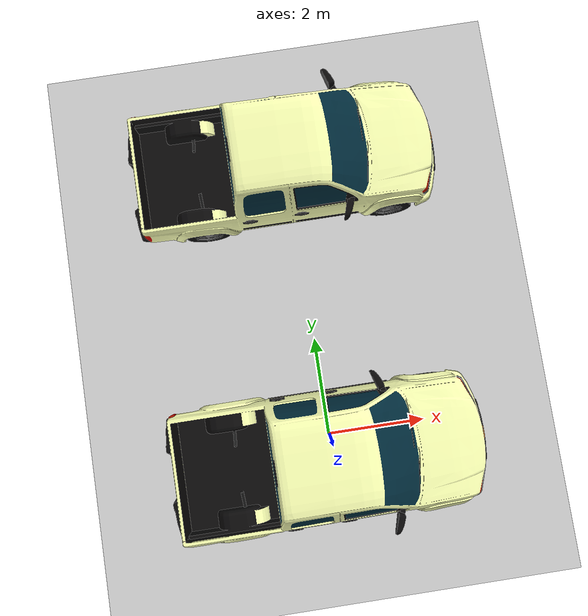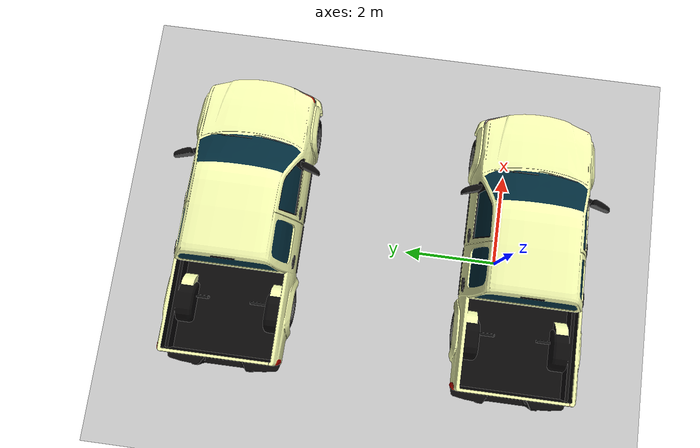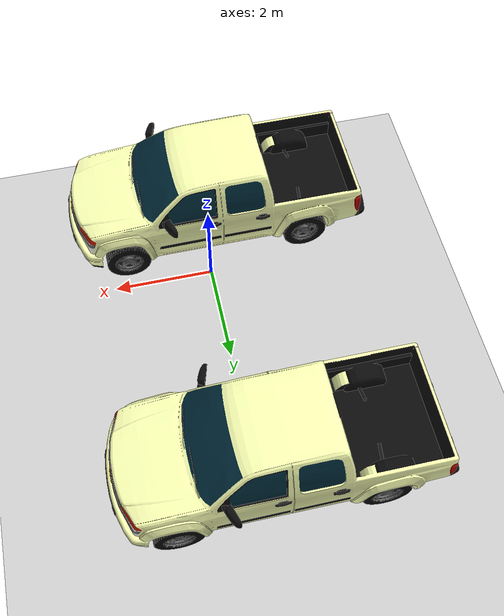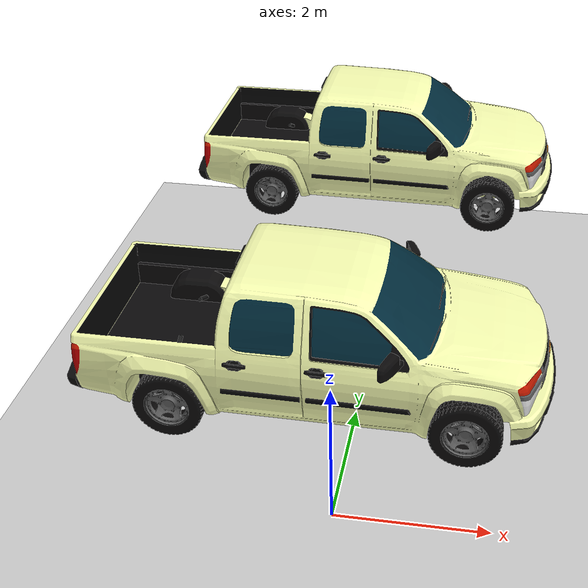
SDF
<?xml version="1.0" ?>
<sdf version="1.4">
    <world name="default">
        <include>
            <uri>model://sun</uri>
        </include>
        <scene>
            <sky>
                <time>10</time>
                <clouds>
                    <speed>5</speed>
                    <direction>1.14</direction>
                    <humidity>0.3</humidity>
                </clouds>
            </sky>
        </scene>
        <gui>
            <camera name="camera_pose">
                <pose>80 -60 60 0 0.5 2</pose>
            </camera>
        </gui>
        <include>
            <uri>model://ground_plane</uri>
            <name>ground_plane</name>
            <pose>0 0 0 0 0 0</pose>
        </include>
        <include>
            <uri>model://colorado</uri>
            <name>colorado1</name>
            <pose>0 0 2 0 0 0</pose>
            <plugin name="colorado1_driving_plugin" filename="libcolorado_driving_plugin.so"/>
        </include>
        <include>
            <uri>model://colorado</uri>
            <name>colorado2</name>
            <pose>0 5 2 0 0 0</pose>
            <plugin name="colorado2_driving_plugin" filename="libcolorado_driving_plugin.so"/>
        </include>
    </world>
</sdf>

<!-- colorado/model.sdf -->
<!-- -*- mode: XML -*- -->
<sdf version='1.4'>
	<model name='colorado'>
		<link name='body'>
			<pose>0 0 0 0 0 0</pose>
			<gravity>1</gravity>
			<self_collide>1</self_collide>
			<inertial>
				<pose>0.00 0.00 1 0 0 0</pose>
				<mass>2000</mass>
				<inertia>
					<ixx>500</ixx>
					<ixy>0.00</ixy>
					<ixz>0.00</ixz>
					<iyy>2000</iyy>
					<iyz>0.00</iyz>
					<izz>2000</izz>
				</inertia>
			</inertial>
			<collision name='body_collision_base_mid'>
				<pose>-0.17975 0 1.20715 0 0 0</pose>
				<geometry>
					<box>
						<size>1.934 2.392 1.438</size>
					</box>
				</geometry>
			</collision>
			<collision name='body_collision_base_hood'>
				<pose>1.65953 0 1.20715 0 0.09472 0</pose>
				<geometry>
					<box>
						<size>1.622 2.414 0.1</size>
					</box>
				</geometry>
			</collision>
			<collision name='body_collision_base_back'>
				<pose>-2.59851 0 1.08547 0 0 0</pose>
				<geometry>
					<box>
						<size>0.158 2.46 0.591</size>
					</box>
				</geometry>
			</collision>
			<collision name='body_collision_base_back_top'>
				<pose>-1.93823 0 1.56472 0 -0.33794 0</pose>
				<geometry>
					<box>
						<size>1.384 2.460 0.269</size>
					</box>
				</geometry>
			</collision>
			<visual name='body_visual'>
				<pose>0 0 0 0 0 0</pose>
				<geometry>
					<mesh>
						<scale>1 1 1</scale>
						<uri>model://../Assets/colorado_body.dae</uri>
					</mesh>
				</geometry>
			</visual>
		</link>

<!--Suspension setup-->
<!--Front left wheel-->
<link name="suspension_main_left_1">
<pose>1.6 0.27504 0.65450 0 0 0</pose>
  <inertial>
    <inertia>
      <ixx>0.01</ixx>
      <ixy>0.0</ixy>
      <ixz>0.0</ixz>
      <iyy>0.01</iyy>
      <iyz>0.0</iyz>
      <izz>0.01</izz>
    </inertia>
     <mass>50</mass>
  </inertial>
</link>
<link name="suspension_holder_left_1">
<pose>1.6 0.3666 0.8654 1.09558 0 0</pose>
  <inertial>
    <inertia>
      <ixx>0.01</ixx>
      <ixy>0.0</ixy>
      <ixz>0.0</ixz>
      <iyy>0.01</iyy>
      <iyz>0.0</iyz>
      <izz>0.01</izz>
    </inertia>
     <mass>50</mass>
  </inertial>
  <visual name='visual'>
    <pose>0 0 -0.25 0 0 0</pose>
    <geometry>
      <cylinder>
        <radius>0.025</radius>
        <length>0.5</length>
      </cylinder>
    </geometry>
    <material><ambient>0.1 0.1 0.1 1</ambient><diffuse>0.1 0.1 0.1 1</diffuse><specular>1 1 1 1</specular><emissive>0 0 0 1</emissive></material>
  </visual>
</link>
<link name="suspension_left_1">
<pose>1.6 0.9 0.391 0 0 0</pose>
  <inertial>
    <inertia>
      <ixx>0.01</ixx>
      <ixy>0.0</ixy>
      <ixz>0.0</ixz>
      <iyy>0.01</iyy>
      <iyz>0.0</iyz>
      <izz>0.01</izz>
    </inertia>
     <mass>50</mass>
  </inertial>
  <visual name='visual'>
    <pose>0 0 0 0 0 0</pose>
    <geometry>
      <cylinder>
        <radius>0.025</radius>
        <length>0.1</length>
      </cylinder>
    </geometry>
  </visual>
</link>
<joint name="spring_left_1" type="revolute">
  <parent>body</parent>
  <child>suspension_main_left_1</child>
  <pose>0.0 0.0 0.0 0.0 0.0 0.0</pose>
  <axis>
    <xyz>1 0 0</xyz>
  </axis>
</joint>
<joint name="suspension_holder_joint_left_1" type="revolute">
  <parent>body</parent>
  <child>suspension_holder_left_1</child>
  <pose>0.0 0.0 0.0 0.0 0.0 0.0</pose>
  <axis>
    <xyz>1 0 0</xyz>
  </axis>
</joint>
<joint name="suspension_holder_wheel_joint_left_1" type="revolute">
  <parent>suspension_holder_left_1</parent>
  <child>suspension_left_1</child>
  <pose>0.0 0.0 0.21 0.0 0.0 0.0</pose>
  <axis>
    <xyz>1 0 0</xyz>
    <limit>
      <lower>-0.5</lower>
      <upper>0.5</upper>
    </limit>
  </axis><!--Front left wheel-->
</joint>
<joint name="suspension_main_wheel_joint_left_1" type="revolute">
  <parent>suspension_main_left_1</parent>
  <child>suspension_left_1</child>
  <pose>0.0 0.0 -0.11 0.0 0.0 0.0</pose>
  <axis>
    <xyz>1 0 0</xyz>
  </axis>
</joint>
<!--Back left wheel-->
<link name="suspension_main_left_2">
<pose>-1.6 0.27504 0.65450 0 0 0</pose>
  <inertial>
    <inertia>
      <ixx>0.01</ixx>
      <ixy>0.0</ixy>
      <ixz>0.0</ixz>
      <iyy>0.01</iyy>
      <iyz>0.0</iyz>
      <izz>0.01</izz>
    </inertia>
     <mass>50</mass>
  </inertial>

</link>
<link name="suspension_holder_left_2">
<pose>-1.6 0.3666 0.8654 1.09558 0 0</pose>
  <inertial>
    <inertia>
      <ixx>0.01</ixx>
      <ixy>0.0</ixy>
      <ixz>0.0</ixz>
      <iyy>0.01</iyy>
      <iyz>0.0</iyz>
      <izz>0.01</izz>
    </inertia>
     <mass>50</mass>
  </inertial>
  <visual name='visual'>
    <pose>0 0 -0.25 0 0 0</pose>
    <geometry>
      <cylinder>
        <radius>0.025</radius>
        <length>0.5</length>
      </cylinder>
    </geometry>
    <material><ambient>0.1 0.1 0.1 1</ambient><diffuse>0.1 0.1 0.1 1</diffuse><specular>1 1 1 1</specular><emissive>0 0 0 1</emissive></material>
  </visual>
</link>
<link name="suspension_left_2">
<pose>-1.6 0.9 0.391 0 0 0</pose>
  <inertial>
    <inertia>
      <ixx>0.01</ixx>
      <ixy>0.0</ixy>
      <ixz>0.0</ixz>
      <iyy>0.01</iyy>
      <iyz>0.0</iyz>
      <izz>0.01</izz>
    </inertia>
     <mass>50</mass>
  </inertial>
  <visual name='visual'>
    <pose>0 0 0 0 0 0</pose>
    <geometry>
      <cylinder>
        <radius>0.025</radius>
        <length>0.1</length>
      </cylinder>
    </geometry>
  </visual>
</link>
<joint name="spring_left_2" type="revolute">
  <parent>body</parent>
  <child>suspension_main_left_2</child>
  <pose>0.0 0.0 0.0 0.0 0.0 0.0</pose>
  <axis>
    <xyz>1 0 0</xyz>
  </axis>
</joint>
<joint name="suspension_holder_joint_left_2" type="revolute">
  <parent>body</parent>
  <child>suspension_holder_left_2</child>
  <pose>0.0 0.0 0.0 0.0 0.0 0.0</pose>
  <axis>
    <xyz>1 0 0</xyz>
  </axis>
</joint>
<joint name="suspension_holder_holder_wheel_joint_left_2" type="revolute">
  <parent>suspension_holder_left_2</parent>
  <child>suspension_left_2</child>
  <pose>0.0 0.0 0.21 0.0 0.0 0.0</pose>
  <axis>
    <xyz>1 0 0</xyz>
    <limit>
      <lower>-0.5</lower>
      <upper>0.5</upper>
    </limit>
  </axis>
</joint>
<joint name="suspension_main_wheel_joint_left_2" type="revolute">
  <parent>suspension_main_left_2</parent>
  <child>suspension_left_2</child>
  <pose>0.0 0.0 -0.11 0.0 0.0 0.0</pose>
  <axis>
    <xyz>1 0 0</xyz>
  </axis>
</joint>
<!--Front right wheel-->
<link name="suspension_main_right_1">
<pose>1.6 -0.27504 0.65450 0 0 0</pose>
  <inertial>
    <inertia>
      <ixx>0.01</ixx>
      <ixy>0.0</ixy>
      <ixz>0.0</ixz>
      <iyy>0.01</iyy>
      <iyz>0.0</iyz>
      <izz>0.01</izz>
    </inertia>
     <mass>50</mass>
  </inertial>
</link>
<link name="suspension_holder_right_1">
<pose>1.6 -0.3666 0.8654 -1.09558 0 0</pose>
  <inertial>
    <inertia>
      <ixx>0.01</ixx>
      <ixy>0.0</ixy>
      <ixz>0.0</ixz>
      <iyy>0.01</iyy>
      <iyz>0.0</iyz>
      <izz>0.01</izz>
    </inertia>
     <mass>50</mass>
  </inertial>
  <visual name='visual'>
    <pose>0 0 -0.25 0 0 0</pose>
    <geometry>
      <cylinder>
        <radius>0.025</radius>
        <length>0.5</length>
      </cylinder>
    </geometry>
    <material><ambient>0.1 0.1 0.1 1</ambient><diffuse>0.1 0.1 0.1 1</diffuse><specular>1 1 1 1</specular><emissive>0 0 0 1</emissive></material>
  </visual>
</link>
<link name="suspension_right_1">
<pose>1.6 -0.9 0.391 0 0 0</pose>
  <inertial>
    <inertia>
      <ixx>0.01</ixx>
      <ixy>0.0</ixy>
      <ixz>0.0</ixz>
      <iyy>0.01</iyy>
      <iyz>0.0</iyz>
      <izz>0.01</izz>
    </inertia>
     <mass>50</mass>
  </inertial>
  <visual name='visual'>
    <pose>0 0 0 0 0 0</pose>
    <geometry>
      <cylinder>
        <radius>0.025</radius>
        <length>0.1</length>
      </cylinder>
    </geometry>
  </visual>
</link>
<joint name="spring_right_1" type="revolute">
  <parent>body</parent>
  <child>suspension_main_right_1</child>
  <pose>0.0 0.0 0.0 0.0 0.0 0.0</pose>
  <axis>
    <xyz>-1 0 0</xyz>
  </axis>
</joint>
<joint name="suspension_holder_joint_right_1" type="revolute">
  <parent>body</parent>
  <child>suspension_holder_right_1</child>
  <pose>0.0 0.0 0.0 0.0 0.0 0.0</pose>
  <axis>
    <xyz>1 0 0</xyz>
  </axis>
</joint>
<joint name="suspension_holder_wheel_joint_right_1" type="revolute">
  <parent>suspension_holder_right_1</parent>
  <child>suspension_right_1</child>
  <pose>0.0 0.0 0.21 0.0 0.0 0.0</pose>
  <axis>
    <xyz>1 0 0</xyz>
    <limit>
      <lower>-0.5</lower>
      <upper>0.5</upper>
    </limit>
  </axis>
</joint>
<joint name="suspension_main_wheel_joint_right_1" type="revolute">
  <parent>suspension_main_right_1</parent>
  <child>suspension_right_1</child>
  <pose>0.0 0.0 -0.11 0.0 0.0 0.0</pose>
  <axis>
    <xyz>1 0 0</xyz>
  </axis>
</joint>
<!--Back right wheel-->
<link name="suspension_main_right_2">
<pose>-1.6 -0.27504 0.65450 0 0 0</pose>
  <inertial>
    <inertia>
      <ixx>0.01</ixx>
      <ixy>0.0</ixy>
      <ixz>0.0</ixz>
      <iyy>0.01</iyy>
      <iyz>0.0</iyz>
      <izz>0.01</izz>
    </inertia>
     <mass>50</mass>
  </inertial>
</link>
<link name="suspension_holder_right_2">
<pose>-1.6 -0.3666 0.8654 -1.09558 0 0</pose>
  <inertial>
    <inertia>
      <ixx>0.01</ixx>
      <ixy>0.0</ixy>
      <ixz>0.0</ixz>
      <iyy>0.01</iyy>
      <iyz>0.0</iyz>
      <izz>0.01</izz>
    </inertia>
     <mass>50</mass>
  </inertial>
  <visual name='visual'>
    <pose>0 0 -0.25 0 0 0</pose>
    <geometry>
      <cylinder>
        <radius>0.025</radius>
        <length>0.5</length>
      </cylinder>
    </geometry>
    <material><ambient>0.1 0.1 0.1 1</ambient><diffuse>0.1 0.1 0.1 1</diffuse><specular>1 1 1 1</specular><emissive>0 0 0 1</emissive></material>
  </visual>
</link>
<link name="suspension_right_2">
<pose>-1.6 -0.9 0.391 0 0 0</pose>
  <inertial>
    <inertia>
      <ixx>0.01</ixx>
      <ixy>0.0</ixy>
      <ixz>0.0</ixz>
      <iyy>0.01</iyy>
      <iyz>0.0</iyz>
      <izz>0.01</izz>
    </inertia>
     <mass>50</mass>
  </inertial>
  <visual name='visual'>
    <pose>0 0 0 0 0 0</pose>
    <geometry>
      <cylinder>
        <radius>0.025</radius>
        <length>0.1</length>
      </cylinder>
    </geometry>
  </visual>
</link>
<joint name="spring_right_2" type="revolute">
  <parent>body</parent>
  <child>suspension_main_right_2</child>
  <pose>0.0 0.0 0.0 0.0 0.0 0.0</pose>
  <axis>
    <xyz>-1 0 0</xyz>
  </axis>
</joint>
<joint name="suspension_holder_joint_right_2" type="revolute">
  <parent>body</parent>
  <child>suspension_holder_right_2</child>
  <pose>0.0 0.0 0.0 0.0 0.0 0.0</pose>
  <axis>
    <xyz>1 0 0</xyz>
  </axis>
</joint>
<joint name="suspension_holder_wheel_joint_right_2" type="revolute">
  <parent>suspension_holder_right_2</parent>
  <child>suspension_right_2</child>
  <pose>0.0 0.0 0.21 0.0 0.0 0.0</pose>
  <axis>
    <xyz>1 0 0</xyz>
    <limit>
      <lower>-0.5</lower>
      <upper>0.5</upper>
    </limit>
  </axis>
</joint>
<joint name="suspension_main_wheel_joint_right_2" type="revolute">
  <parent>suspension_main_right_2</parent>
  <child>suspension_right_2</child>
  <pose>0.0 0.0 -0.11 0.0 0.0 0.0</pose>
  <axis>
    <xyz>1 0 0</xyz>
  </axis>
</joint>
<!--End of suspension setup-->

<!--steering setup-->
<link name="steering_left_1">
  <pose>1.6 0.9 0.391 0 0 0</pose>
  <inertial>
    <inertia>
      <ixx>0.01</ixx>
      <ixy>0.0</ixy>
      <ixz>0.0</ixz>
      <iyy>0.01</iyy>
      <iyz>0.0</iyz>
      <izz>0.01</izz>
    </inertia>
    <mass>50</mass>
  </inertial>
  <visual name='visual'>
    <pose>0 0 0 0 0 3.14159265359</pose>
    <geometry>
      <cylinder>
        <radius>0.02</radius>
        <length>0.3</length>
      </cylinder>
    </geometry>
    <material><ambient>0.2 0.2 0.2 1</ambient><diffuse>0.1 0.1 0.1 1</diffuse><specular>1 1 1 1</specular><emissive>0 0 0 1</emissive></material>
  </visual>
</link>
<joint name="steering_joint_left_1" type="revolute">
  <parent>suspension_left_1</parent>
  <child>steering_left_1</child>
  <pose>0.0 0.0 0.0 0.0 0.0 0.0</pose>
  <axis>
    <dynamics>
      <damping>1</damping>
    </dynamics>
    <limit>
      <lower>-0.61</lower>
      <upper>0.61</upper>
    </limit>
    <xyz>0 0 1</xyz>
  </axis>
</joint>
<link name="steering_right_1">
  <pose>1.6 -0.9 0.391 0 0 0</pose>
  <inertial>
    <inertia>
      <ixx>0.01</ixx>
      <ixy>0.0</ixy>
      <ixz>0.0</ixz>
      <iyy>0.01</iyy>
      <iyz>0.0</iyz>
      <izz>0.01</izz>
    </inertia>
    <mass>50</mass>
  </inertial>
  <visual name='visual'>
    <pose>0 0 0 0 0 0</pose>
    <geometry>
      <cylinder>
        <radius>0.02</radius>
        <length>0.3</length>
      </cylinder>
    </geometry>
    <material><ambient>0.2 0.2 0.2 1</ambient><diffuse>0.1 0.1 0.1 1</diffuse><specular>1 1 1 1</specular><emissive>0 0 0 1</emissive></material>
  </visual>
</link>
<joint name="steering_joint_right_1" type="revolute">
  <parent>suspension_right_1</parent>
  <child>steering_right_1</child>
  <pose>0.0 0.0 0.0 0.0 0.0 0.0</pose>
  <axis>
    <dynamics>
      <damping>1</damping>
    </dynamics>
    <limit>
      <lower>-0.61</lower>
      <upper>0.61</upper>
    </limit>
    <xyz>0 0 1</xyz>
  </axis>
</joint>
<!--End of steering setup-->

<!--wheels Setup-->
<link name='left_wheel_1'>
	<pose>1.6 0.9 0.391 0 0 0</pose>
	<inertial>
		<pose>0 0 0 0 0 0</pose>
		<mass>80</mass>
		<inertia>
			<ixx>5.9</ixx>
			<ixy>0</ixy>
			<ixz>0</ixz>
			<iyy>9.88</iyy>
			<iyz>0</iyz>
			<izz>5.9</izz>
		</inertia>
	</inertial>
	<collision name='wheel_col'>
		<pose>0 0 0 1.57079633 0 0</pose>
		<geometry>
			<cylinder>
				<length>0.1</length>
				<radius>0.388</radius>
			</cylinder>
		</geometry>
	</collision>
		<collision name='wheel_col'>
		<pose>0 0 0 1.57079633 0 0</pose>
		<geometry>
			<cylinder>
				<length>0.2</length>
				<radius>0.387</radius>
			</cylinder>
		</geometry>
	</collision>
	<collision name='wheel_col'>
		<pose>0 0 0 1.57079633 0 0</pose>
		<geometry>
			<cylinder>
				<length>0.24</length>
				<radius>0.385</radius>
			</cylinder>
		</geometry>
	</collision>
	<collision name='wheel_col'>
		<pose>0 0 0 1.57079633 0 0</pose>
		<geometry>
			<cylinder>
				<length>0.254</length>
				<radius>0.38</radius>
			</cylinder>
		</geometry>
	</collision>
	<visual name='left_wheel'>
		<pose>0 0 0 0 0 3.1469265</pose>
		<geometry>
			<mesh>
				<uri>model://../Assets/colorado_wheel.dae</uri>
			</mesh>
		</geometry>
	</visual>
	<gravity>1</gravity>
	<self_collide>0</self_collide>
</link>
<joint name='left_wheel_1' type='revolute'>
	<child>left_wheel_1</child>
	<parent>steering_left_1</parent>
	<axis>
		<xyz>0 1 0</xyz>
	</axis>
</joint>
<link name='left_wheel_2'>
	<pose>-1.6 0.9 0.391 0 0 0</pose>
	<inertial>
		<pose>0 0 0 0 0 0</pose>
		<mass>80</mass>
		<inertia>
			<ixx>5.9</ixx>
			<ixy>0</ixy>
			<ixz>0</ixz>
			<iyy>9.88</iyy>
			<iyz>0</iyz>
			<izz>5.9</izz>
		</inertia>
	</inertial>
	<collision name='wheel_col'>
		<pose>0 0 0 1.57079633 0 0</pose>
		<geometry>
			<cylinder>
				<length>0.1</length>
				<radius>0.388</radius>
			</cylinder>
		</geometry>
	</collision>
		<collision name='wheel_col'>
		<pose>0 0 0 1.57079633 0 0</pose>
		<geometry>
			<cylinder>
				<length>0.2</length>
				<radius>0.387</radius>
			</cylinder>
		</geometry>
	</collision>
	<collision name='wheel_col'>
		<pose>0 0 0 1.57079633 0 0</pose>
		<geometry>
			<cylinder>
				<length>0.24</length>
				<radius>0.385</radius>
			</cylinder>
		</geometry>
	</collision>
	<collision name='wheel_col'>
		<pose>0 0 0 1.57079633 0 0</pose>
		<geometry>
			<cylinder>
				<length>0.254</length>
				<radius>0.38</radius>
			</cylinder>
		</geometry>
	</collision>
	<visual name='left_wheel'>
		<pose>0 0 0 0 0 3.1469265</pose>
		<geometry>
			<mesh>
				<uri>model://../Assets/colorado_wheel.dae</uri>
			</mesh>
		</geometry>
	</visual>
	<gravity>1</gravity>
	<self_collide>0</self_collide>
</link>
<joint name='left_wheel_2' type='revolute'>
	<child>left_wheel_2</child>
	<parent>suspension_left_2</parent>
	<axis>
		<xyz>0 1 0</xyz>
	</axis>
</joint>
<link name='right_wheel_1'>
	<pose>1.6 -0.9 0.391 0 0 0</pose>
	<inertial>
		<pose>0 0 0 0 0 0</pose>
		<mass>80</mass>
		<inertia>
			<ixx>5.9</ixx>
			<ixy>0</ixy>
			<ixz>0</ixz>
			<iyy>9.88</iyy>
			<iyz>0</iyz>
			<izz>5.9</izz>
		</inertia>
	</inertial>
	<collision name='wheel_col'>
		<pose>0 0 0 1.57079633 0 0</pose>
		<geometry>
			<cylinder>
				<length>0.1</length>
				<radius>0.388</radius>
			</cylinder>
		</geometry>
	</collision>
		<collision name='wheel_col'>
		<pose>0 0 0 1.57079633 0 0</pose>
		<geometry>
			<cylinder>
				<length>0.2</length>
				<radius>0.387</radius>
			</cylinder>
		</geometry>
	</collision>
	<collision name='wheel_col'>
		<pose>0 0 0 1.57079633 0 0</pose>
		<geometry>
			<cylinder>
				<length>0.24</length>
				<radius>0.385</radius>
			</cylinder>
		</geometry>
	</collision>
	<collision name='wheel_col'>
		<pose>0 0 0 1.57079633 0 0</pose>
		<geometry>
			<cylinder>
				<length>0.254</length>
				<radius>0.38</radius>
			</cylinder>
		</geometry>
	</collision>
	<visual name='right_wheel'>
		<pose>0 0 0 0 0 0</pose>
		<geometry>
			<mesh>
				<uri>model://../Assets/colorado_wheel.dae</uri>
			</mesh>
		</geometry>
	</visual>
	<gravity>1</gravity>
	<self_collide>0</self_collide>
</link>
<joint name='right_wheel_1' type='revolute'>
	<child>right_wheel_1</child>
	<parent>steering_right_1</parent>
	<axis>
		<xyz>0 1 0</xyz>
	</axis>
</joint>
<link name='right_wheel_2'>
	<pose>-1.6 -0.9 0.391 0 0 0</pose>
	<inertial>
		<pose>0 0 0 0 0 0</pose>
		<mass>80</mass>
		<inertia>
			<ixx>5.9</ixx>
			<ixy>0</ixy>
			<ixz>0</ixz>
			<iyy>9.88</iyy>
			<iyz>0</iyz>
			<izz>5.9</izz>
		</inertia>
	</inertial>
	<collision name='wheel_col'>
		<pose>0 0 0 1.57079633 0 0</pose>
		<geometry>
			<cylinder>
				<length>0.1</length>
				<radius>0.388</radius>
			</cylinder>
		</geometry>
	</collision>
		<collision name='wheel_col'>
		<pose>0 0 0 1.57079633 0 0</pose>
		<geometry>
			<cylinder>
				<length>0.2</length>
				<radius>0.387</radius>
			</cylinder>
		</geometry>
	</collision>
	<collision name='wheel_col'>
		<pose>0 0 0 1.57079633 0 0</pose>
		<geometry>
			<cylinder>
				<length>0.24</length>
				<radius>0.385</radius>
			</cylinder>
		</geometry>
	</collision>
	<collision name='wheel_col'>
		<pose>0 0 0 1.57079633 0 0</pose>
		<geometry>
			<cylinder>
				<length>0.254</length>
				<radius>0.38</radius>
			</cylinder>
		</geometry>
	</collision>
	<visual name='right_wheel'>
		<pose>0 0 0 0 0 0</pose>
		<geometry>
			<mesh>
				<uri>model://../Assets/colorado_wheel.dae</uri>
			</mesh>
		</geometry>
	</visual>
	<gravity>1</gravity>
	<self_collide>0</self_collide>
</link>
<joint name='right_wheel_2' type='revolute'>
	<child>right_wheel_2</child>
	<parent>suspension_right_2</parent>
	<axis>
		<xyz>0 1 0</xyz>
	</axis>
</joint>
<!--End of wheels setup-->

	</model>
</sdf>
